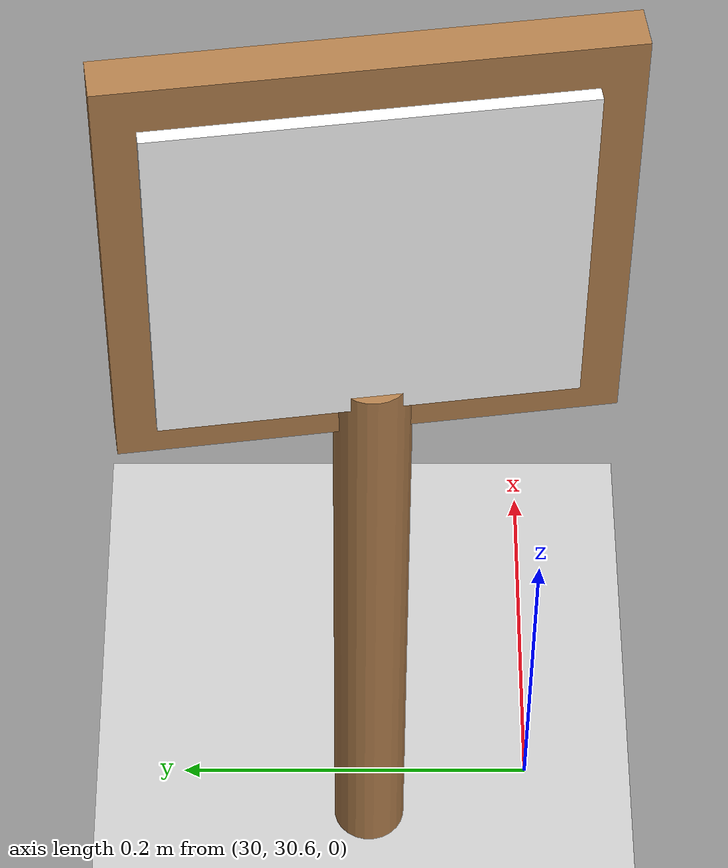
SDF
<sdf version="1.6">
 <world name="default">
  <model name="ground_plane">
   <static>1</static>
   <link name="link">
    <collision name="collision">
     <geometry><plane><normal>0 0 1</normal><size>100 100</size></plane></geometry>
     <surface>
      <contact><collide_bitmask>65535</collide_bitmask></contact>
      <friction><ode><mu>100</mu><mu2>50</mu2></ode></friction>
     </surface>
    </collision>
    <visual name="visual">
     <cast_shadows>0</cast_shadows>
     <geometry><plane><normal>0 0 1</normal><size>100 100</size></plane></geometry>
     <material>
      <script><uri>file://media/materials/scripts/gazebo.material</uri><name>Gazebo/Grey</name></script>
     </material>
    </visual>
   </link>
  </model>
  <model name="aruco_wood_thin_0">
   <link name="link_0">
    <inertial>
     <mass>1</mass>
     <inertia><ixx>0.145833</ixx><ixy>0</ixy><ixz>0</ixz><iyy>0.145833</iyy><iyz>0</iyz><izz>0.125</izz></inertia>
    </inertial>
    <pose>-0.017932 0.660168 -0.097628 0 -0 0</pose>
    <visual name="visual">
     <geometry><cylinder><radius>0.02</radius><length>0.4</length></cylinder></geometry>
     <material>
      <lighting>1</lighting>
      <script><uri>file://media/materials/scripts/gazebo.material</uri><name>Gazebo/Wood</name></script>
      <shader type="vertex"><normal_map>__default__</normal_map></shader>
      <ambient>0.3 0.3 0.3 1</ambient>
      <diffuse>0.7 0.7 0.7 1</diffuse>
      <specular>0.01 0.01 0.01 1</specular>
      <emissive>0 0 0 1</emissive>
     </material>
    </visual>
    <collision name="collision">
     <geometry><cylinder><radius>0.02</radius><length>0.4</length></cylinder></geometry>
     <surface>
      <friction>
       <ode><mu>1</mu><mu2>1</mu2><fdir1>0 0 0</fdir1><slip1>0</slip1><slip2>0</slip2></ode>
       <torsional>
        <coefficient>1</coefficient>
        <patch_radius>0</patch_radius>
        <surface_radius>0</surface_radius>
        <use_patch_radius>1</use_patch_radius>
        <ode><slip>0</slip></ode>
       </torsional>
      </friction>
      <bounce><restitution_coefficient>0</restitution_coefficient><threshold>1e+06</threshold></bounce>
      <contact>
       <collide_without_contact>0</collide_without_contact>
       <collide_without_contact_bitmask>1</collide_without_contact_bitmask>
       <collide_bitmask>1</collide_bitmask>
       <ode>
        <soft_cfm>0</soft_cfm>
        <soft_erp>0.2</soft_erp>
        <kp>1e+13</kp>
        <kd>1</kd>
        <max_vel>0.01</max_vel>
        <min_depth>0</min_depth>
       </ode>
       <bullet>
        <split_impulse>1</split_impulse>
        <split_impulse_penetration_threshold>-0.01</split_impulse_penetration_threshold>
        <soft_cfm>0</soft_cfm>
        <soft_erp>0.2</soft_erp>
        <kp>1e+13</kp>
        <kd>1</kd>
       </bullet>
      </contact>
     </surface>
    </collision>
   </link>
   <link name="link_1">
    <inertial>
     <mass>1.21407</mass>
     <inertia>
      <ixx>0.00864359</ixx>
      <ixy>0</ixy>
      <ixz>0</ixz>
      <iyy>0.00421539</iyy>
      <iyz>0</iyz>
      <izz>0.00446773</izz>
     </inertia>
    </inertial>
    <pose>-0.025899 0.66382 0.194379 0 -0 0</pose>
    <visual name="visual">
     <geometry><box><size>0.013978 0.209676 0.203642</size></box></geometry>
     <material>
      <script><uri>file://scripts</uri><uri>file://textures</uri><name>aruco/standard_opp</name></script>
      <emissive>0 0 0 1</emissive>
      <shader type="vertex"><normal_map>__default__</normal_map></shader>
      <ambient>1 1 1 1</ambient>
      <diffuse>1 1 1 1</diffuse>
      <specular>0 0 0 1</specular>
     </material>
    </visual>
    <collision name="collision">
     <geometry><box><size>0.013978 0.209676 0.203642</size></box></geometry>
     <surface>
      <friction>
       <ode><mu>1</mu><mu2>1</mu2><fdir1>0 0 0</fdir1><slip1>0</slip1><slip2>0</slip2></ode>
       <torsional>
        <coefficient>1</coefficient>
        <patch_radius>0</patch_radius>
        <surface_radius>0</surface_radius>
        <use_patch_radius>1</use_patch_radius>
        <ode><slip>0</slip></ode>
       </torsional>
      </friction>
      <bounce><restitution_coefficient>0</restitution_coefficient><threshold>1e+06</threshold></bounce>
      <contact>
       <collide_without_contact>0</collide_without_contact>
       <collide_without_contact_bitmask>1</collide_without_contact_bitmask>
       <collide_bitmask>1</collide_bitmask>
       <ode>
        <soft_cfm>0</soft_cfm>
        <soft_erp>0.2</soft_erp>
        <kp>1e+13</kp>
        <kd>1</kd>
        <max_vel>0.01</max_vel>
        <min_depth>0</min_depth>
       </ode>
       <bullet>
        <split_impulse>1</split_impulse>
        <split_impulse_penetration_threshold>-0.01</split_impulse_penetration_threshold>
        <soft_cfm>0</soft_cfm>
        <soft_erp>0.2</soft_erp>
        <kp>1e+13</kp>
        <kd>1</kd>
       </bullet>
      </contact>
     </surface>
    </collision>
   </link>
   <link name="link_1_clone">
    <inertial>
     <mass>0.519809</mass>
     <inertia>
      <ixx>0.00549167</ixx>
      <ixy>0</ixy>
      <ixz>0</ixz>
      <iyy>0.00278045</iyy>
      <iyz>0</iyz>
      <izz>0.00275135</izz>
     </inertia>
    </inertial>
    <pose>-0.015207 0.663184 0.195267 0 -0 0</pose>
    <visual name="visual">
     <geometry><box><size>0.021523 0.251103 0.252437</size></box></geometry>
     <material>
      <script><uri>file://scripts</uri><uri>file://textures</uri><name>Gazebo/Wood</name></script>
      <shader type="vertex"><normal_map>__default__</normal_map></shader>
      <ambient>1 1 1 1</ambient>
      <diffuse>1 1 1 1</diffuse>
      <specular>0 0 0 1</specular>
      <emissive>0 0 0 1</emissive>
     </material>
    </visual>
    <collision name="collision">
     <geometry><box><size>0.021523 0.251103 0.252437</size></box></geometry>
     <surface>
      <friction>
       <ode><mu>1</mu><mu2>1</mu2><fdir1>0 0 0</fdir1><slip1>0</slip1><slip2>0</slip2></ode>
       <torsional>
        <coefficient>1</coefficient>
        <patch_radius>0</patch_radius>
        <surface_radius>0</surface_radius>
        <use_patch_radius>1</use_patch_radius>
        <ode><slip>0</slip></ode>
       </torsional>
      </friction>
      <bounce><restitution_coefficient>0</restitution_coefficient><threshold>1e+06</threshold></bounce>
      <contact>
       <collide_without_contact>0</collide_without_contact>
       <collide_without_contact_bitmask>1</collide_without_contact_bitmask>
       <collide_bitmask>1</collide_bitmask>
       <ode>
        <soft_cfm>0</soft_cfm>
        <soft_erp>0.2</soft_erp>
        <kp>1e+13</kp>
        <kd>1</kd>
        <max_vel>0.01</max_vel>
        <min_depth>0</min_depth>
       </ode>
       <bullet>
        <split_impulse>1</split_impulse>
        <split_impulse_penetration_threshold>-0.01</split_impulse_penetration_threshold>
        <soft_cfm>0</soft_cfm>
        <soft_erp>0.2</soft_erp>
        <kp>1e+13</kp>
        <kd>1</kd>
       </bullet>
      </contact>
     </surface>
    </collision>
   </link>
   <link name="link_1_clone_0">
    <inertial>
     <mass>0.238009</mass>
     <inertia>
      <ixx>0.00161175</ixx>
      <ixy>0</ixy>
      <ixz>0</ixz>
      <iyy>0.000787067</iyy>
      <iyz>0</iyz>
      <izz>0.000832042</izz>
     </inertia>
    </inertial>
    <pose>-0.00403 0.665261 0.195247 0 -0 0</pose>
    <visual name="visual">
     <geometry><box><size>0.013624 0.204363 0.198738</size></box></geometry>
     <material>
      <script><uri>file://scripts</uri><uri>file://textures</uri><name>aruco/standard_opp</name></script>
      <emissive>0 0 0 1</emissive>
      <shader type="vertex"><normal_map>__default__</normal_map></shader>
      <ambient>1 1 1 1</ambient>
      <diffuse>1 1 1 1</diffuse>
      <specular>0 0 0 1</specular>
     </material>
    </visual>
    <collision name="collision">
     <geometry><box><size>0.013624 0.204363 0.198738</size></box></geometry>
     <surface>
      <friction>
       <ode><mu>1</mu><mu2>1</mu2><fdir1>0 0 0</fdir1><slip1>0</slip1><slip2>0</slip2></ode>
       <torsional>
        <coefficient>1</coefficient>
        <patch_radius>0</patch_radius>
        <surface_radius>0</surface_radius>
        <use_patch_radius>1</use_patch_radius>
        <ode><slip>0</slip></ode>
       </torsional>
      </friction>
      <bounce><restitution_coefficient>0</restitution_coefficient><threshold>1e+06</threshold></bounce>
      <contact>
       <collide_without_contact>0</collide_without_contact>
       <collide_without_contact_bitmask>1</collide_without_contact_bitmask>
       <collide_bitmask>1</collide_bitmask>
       <ode>
        <soft_cfm>0</soft_cfm>
        <soft_erp>0.2</soft_erp>
        <kp>1e+13</kp>
        <kd>1</kd>
        <max_vel>0.01</max_vel>
        <min_depth>0</min_depth>
       </ode>
       <bullet>
        <split_impulse>1</split_impulse>
        <split_impulse_penetration_threshold>-0.01</split_impulse_penetration_threshold>
        <soft_cfm>0</soft_cfm>
        <soft_erp>0.2</soft_erp>
        <kp>1e+13</kp>
        <kd>1</kd>
       </bullet>
      </contact>
     </surface>
    </collision>
   </link>
   <joint name="link_0_JOINT_0" type="fixed">
    <parent>link_0</parent>
    <child>link_1</child>
    <physics>
     <ode><limit><cfm>0</cfm><erp>0.2</erp></limit><suspension><cfm>0</cfm><erp>0.2</erp></suspension></ode>
    </physics>
   </joint>
   <joint name="link_1_JOINT_0_0" type="fixed">
    <parent>link_1</parent>
    <child>link_1_clone_0</child>
    <physics>
     <ode><limit><cfm>0</cfm><erp>0.2</erp></limit><suspension><cfm>0</cfm><erp>0.2</erp></suspension></ode>
    </physics>
   </joint>
   <joint name="link_1_JOINT_0" type="fixed">
    <parent>link_1</parent>
    <child>link_1_clone</child>
    <physics>
     <ode><limit><cfm>0</cfm><erp>0.2</erp></limit><suspension><cfm>0</cfm><erp>0.2</erp></suspension></ode>
    </physics>
   </joint>
   <static>0</static>
   <pose>30.0765 30.0395 0.297612 1.1e-05 2.5e-05 0.13091</pose>
  </model>
 </world>
</sdf>
